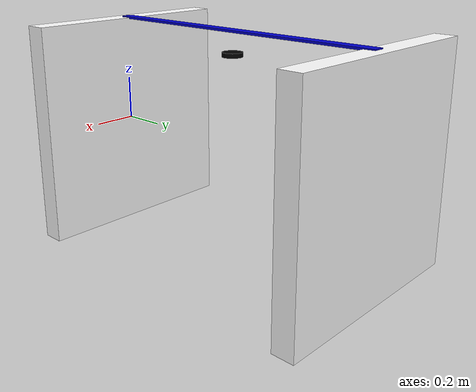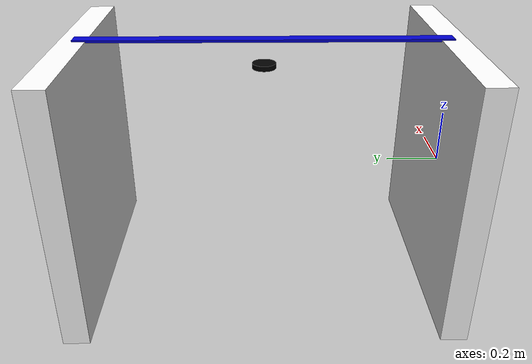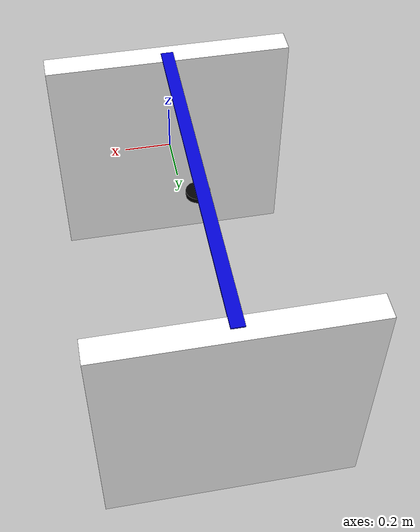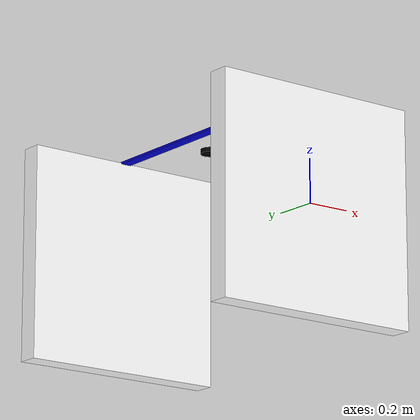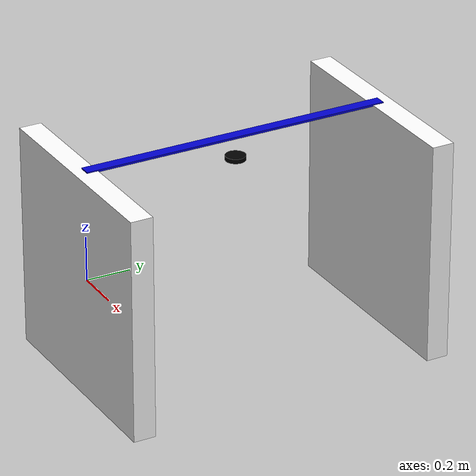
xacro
<?xml version="1.0"?>
<robot xmlns:xacro="http://www.ros.org/wiki/xacro" name="pusher">
  <xacro:property name="width" value="1.4" />
  <material name="blue">
    <color rgba="0 0 0.8 1"/>
  </material>
  <material name="black">
    <color rgba="0 0 0 1"/>
  </material>
  <material name="white">
    <color rgba="1 1 1 1"/>
  </material>

  <link name="base_link">
    <visual>
      <geometry>
        <box size="1 0.1 1"/>
      </geometry>
      <origin rpy="0 1.57075 0" xyz="0 0 0"/>
      <material name="white"/>
    </visual>
    <collision>
      <geometry>
        <box size="1 0.1 1"/>
      </geometry>
      <origin rpy="0 1.57075 0" xyz="0 0 0"/>
    </collision>
    <inertial>
      <mass value="80"/>
      <inertia ixx="1.0" ixy="0.0" ixz="0.0" iyy="1.0" iyz="0.0" izz="1.0"/>
    </inertial>
  </link>

  <link name="horizon_track">
    <visual>
      <geometry>
        <box size="${width} 0.05 0.01"/>
      </geometry>
      <origin rpy="0 0 1.57075" xyz="0 ${width/2} 0"/>
      <material name="blue"/>
    </visual>
    <collision>
      <geometry>
        <box size="${width} 0.05 0.01"/>
      </geometry>
      <origin rpy="0 0 1.57075" xyz="0 ${width/2} 0"/>
    </collision>
    <inertial>
      <mass value="10"/>
      <inertia ixx="1.0" ixy="0.0" ixz="0.0" iyy="1.0" iyz="0.0" izz="1.0"/>
    </inertial>
  </link>
  <joint name="base_to_horizon_track" type="prismatic">
    <parent link="base_link"/>
    <child link="horizon_track"/>
    <limit effort="1000.0" lower="-0.5" upper="0.5" velocity="0.5"/>
    <origin xyz="0 0 0.5"/>
  </joint>

  <link name="pusher">
    <visual>
      <geometry>
        <cylinder length="0.02" radius="0.045"/>
      </geometry>
      <material name="black"/>
    </visual>
    <collision>
      <geometry>
        <cylinder length="0.02" radius="0.045"/>
      </geometry>
    </collision>
    <inertial>
      <mass value="10"/>
      <inertia ixx="1.0" ixy="0.0" ixz="0.0" iyy="1.0" iyz="0.0" izz="1.0"/>
    </inertial>
  </link>
  <joint name="horizon_track_to_pusher" type="prismatic">
    <axis xyz="0 1 0"/>
    <parent link="horizon_track"/>
    <child link="pusher"/>
    <limit effort="1000.0" lower="-0.5" upper="0.5" velocity="0.5"/>
    <origin xyz="0 ${width/2} -0.1"/>
  </joint>

  <link name="left_leg">
    <visual>
      <geometry>
        <box size="1 0.1 1"/>
      </geometry>
      <origin rpy="0 0 0" xyz="0 0 0"/>
      <material name="white"/>
    </visual>
    <collision>
      <geometry>
        <box size="1 0.1 1"/>
      </geometry>
      <origin rpy="0 0 0" xyz="0 0 0"/>
    </collision>
    <inertial>
      <mass value="80"/>
      <inertia ixx="1.0" ixy="0.0" ixz="0.0" iyy="1.0" iyz="0.0" izz="1.0"/>
    </inertial>
  </link>
  <joint name="base_to_left_leg" type="fixed">
    <parent link="base_link"/>
    <child link="left_leg"/>
    <origin xyz="0 ${width} 0"/>
  </joint>

  <transmission name="tran1">
    <type>transmission_interface/SimpleTransmission</type>
    <joint name="base_to_horizon_track">
      <hardwareInterface>EffortJointInterface</hardwareInterface>
    </joint>
    <actuator name="motor1">
      <hardwareInterface>EffortJointInterface</hardwareInterface>
      <mechanicalReduction>1</mechanicalReduction>
    </actuator>
  </transmission>

  <transmission name="tran2">
    <type>transmission_interface/SimpleTransmission</type>
    <joint name="horizon_track_to_pusher">
      <hardwareInterface>EffortJointInterface</hardwareInterface>
    </joint>
    <actuator name="motor2">
      <hardwareInterface>EffortJointInterface</hardwareInterface>
      <mechanicalReduction>1</mechanicalReduction>
    </actuator>
  </transmission>

  <gazebo>
    <plugin name="gazebo_ros_control" filename="libgazebo_ros_control.so">
      <robotNamespace>/</robotNamespace>
    </plugin>
  </gazebo>

</robot>
